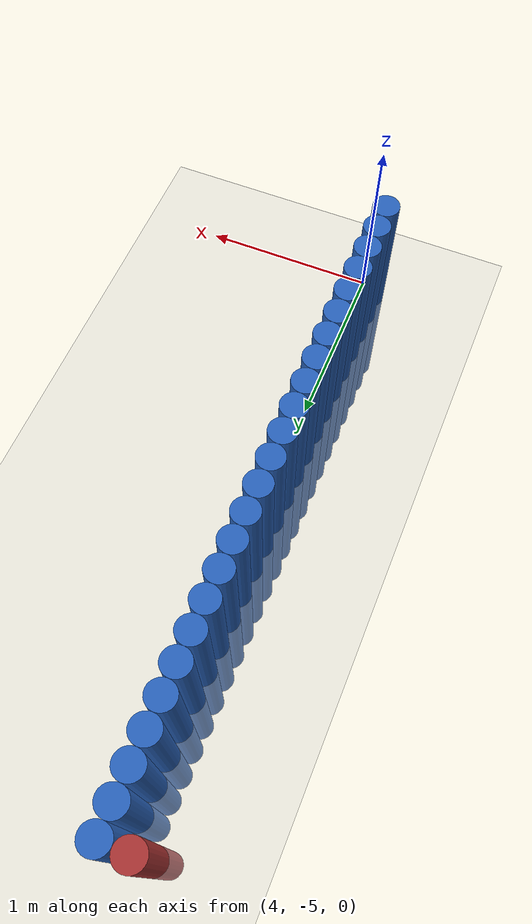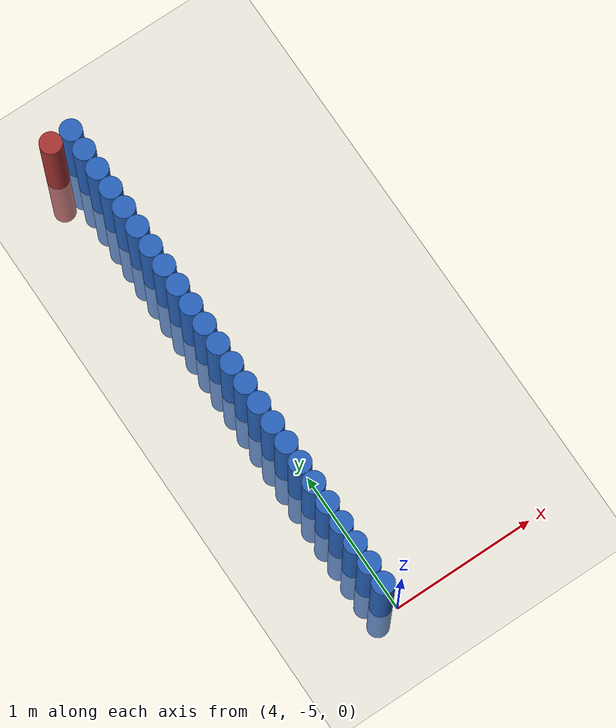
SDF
<sdf version="1.6">
 <world name="default">
  <model name="ground_plane">
   <static>1</static>
   <link name="link">
    <collision name="collision">
     <geometry><plane><normal>0 0 1</normal><size>100 100</size></plane></geometry>
     <surface><friction><ode><mu>100</mu><mu2>50</mu2></ode></friction></surface>
    </collision>
    <visual name="visual">
     <cast_shadows>0</cast_shadows>
     <geometry><plane><normal>0 0 1</normal><size>100 100</size></plane></geometry>
     <material>
      <script><uri>file://media/materials/scripts/gazebo.material</uri><name>Gazebo/Grey</name></script>
     </material>
    </visual>
   </link>
  </model>
  <model name="unit_cylinder_0">
   <static>1</static>
   <pose>3.925000 -4.925000 0.000000 0.000000 0.000000 0.000000</pose>
   <link name="link">
    <inertial>
     <mass>1</mass>
     <inertia><ixx>0.145833</ixx><ixy>0</ixy><ixz>0</ixz><iyy>0.145833</iyy><iyz>0</iyz><izz>0.125</izz></inertia>
    </inertial>
    <collision name="collision">
     <geometry><cylinder><radius>0.075000</radius><length>1.5</length></cylinder></geometry>
    </collision>
    <visual name="visual">
     <geometry><cylinder><radius>0.075000</radius><length>1.5</length></cylinder></geometry>
     <material>
      <ambient>0.152000 0.379000 0.720000 1</ambient>
      <diffuse>0.152000 0.379000 0.720000 1</diffuse>
     </material>
     <material>
      <script><name>Gazebo/Grey</name><uri>file://media/materials/scripts/gazebo.material</uri></script>
     </material>
    </visual>
   </link>
  </model>
  <model name="unit_cylinder_50">
   <static>1</static>
   <pose>3.925000 -4.775000 0.000000 0.000000 0.000000 0.000000</pose>
   <link name="link">
    <inertial>
     <mass>1</mass>
     <inertia><ixx>0.145833</ixx><ixy>0</ixy><ixz>0</ixz><iyy>0.145833</iyy><iyz>0</iyz><izz>0.125</izz></inertia>
    </inertial>
    <collision name="collision">
     <geometry><cylinder><radius>0.075000</radius><length>1.5</length></cylinder></geometry>
    </collision>
    <visual name="visual">
     <geometry><cylinder><radius>0.075000</radius><length>1.5</length></cylinder></geometry>
     <material>
      <ambient>0.152000 0.379000 0.720000 1</ambient>
      <diffuse>0.152000 0.379000 0.720000 1</diffuse>
     </material>
     <material>
      <script><name>Gazebo/Grey</name><uri>file://media/materials/scripts/gazebo.material</uri></script>
     </material>
    </visual>
   </link>
  </model>
  <model name="unit_cylinder_52">
   <static>1</static>
   <pose>3.925000 -4.625000 0.000000 0.000000 0.000000 0.000000</pose>
   <link name="link">
    <inertial>
     <mass>1</mass>
     <inertia><ixx>0.145833</ixx><ixy>0</ixy><ixz>0</ixz><iyy>0.145833</iyy><iyz>0</iyz><izz>0.125</izz></inertia>
    </inertial>
    <collision name="collision">
     <geometry><cylinder><radius>0.075000</radius><length>1.5</length></cylinder></geometry>
    </collision>
    <visual name="visual">
     <geometry><cylinder><radius>0.075000</radius><length>1.5</length></cylinder></geometry>
     <material>
      <ambient>0.152000 0.379000 0.720000 1</ambient>
      <diffuse>0.152000 0.379000 0.720000 1</diffuse>
     </material>
     <material>
      <script><name>Gazebo/Grey</name><uri>file://media/materials/scripts/gazebo.material</uri></script>
     </material>
    </visual>
   </link>
  </model>
  <model name="unit_cylinder_54">
   <static>1</static>
   <pose>3.925000 -4.475000 0.000000 0.000000 0.000000 0.000000</pose>
   <link name="link">
    <inertial>
     <mass>1</mass>
     <inertia><ixx>0.145833</ixx><ixy>0</ixy><ixz>0</ixz><iyy>0.145833</iyy><iyz>0</iyz><izz>0.125</izz></inertia>
    </inertial>
    <collision name="collision">
     <geometry><cylinder><radius>0.075000</radius><length>1.5</length></cylinder></geometry>
    </collision>
    <visual name="visual">
     <geometry><cylinder><radius>0.075000</radius><length>1.5</length></cylinder></geometry>
     <material>
      <ambient>0.152000 0.379000 0.720000 1</ambient>
      <diffuse>0.152000 0.379000 0.720000 1</diffuse>
     </material>
     <material>
      <script><name>Gazebo/Grey</name><uri>file://media/materials/scripts/gazebo.material</uri></script>
     </material>
    </visual>
   </link>
  </model>
  <model name="unit_cylinder_56">
   <static>1</static>
   <pose>3.925000 -4.325000 0.000000 0.000000 0.000000 0.000000</pose>
   <link name="link">
    <inertial>
     <mass>1</mass>
     <inertia><ixx>0.145833</ixx><ixy>0</ixy><ixz>0</ixz><iyy>0.145833</iyy><iyz>0</iyz><izz>0.125</izz></inertia>
    </inertial>
    <collision name="collision">
     <geometry><cylinder><radius>0.075000</radius><length>1.5</length></cylinder></geometry>
    </collision>
    <visual name="visual">
     <geometry><cylinder><radius>0.075000</radius><length>1.5</length></cylinder></geometry>
     <material>
      <ambient>0.152000 0.379000 0.720000 1</ambient>
      <diffuse>0.152000 0.379000 0.720000 1</diffuse>
     </material>
     <material>
      <script><name>Gazebo/Grey</name><uri>file://media/materials/scripts/gazebo.material</uri></script>
     </material>
    </visual>
   </link>
  </model>
  <model name="unit_cylinder_58">
   <static>1</static>
   <pose>3.925000 -4.175000 0.000000 0.000000 0.000000 0.000000</pose>
   <link name="link">
    <inertial>
     <mass>1</mass>
     <inertia><ixx>0.145833</ixx><ixy>0</ixy><ixz>0</ixz><iyy>0.145833</iyy><iyz>0</iyz><izz>0.125</izz></inertia>
    </inertial>
    <collision name="collision">
     <geometry><cylinder><radius>0.075000</radius><length>1.5</length></cylinder></geometry>
    </collision>
    <visual name="visual">
     <geometry><cylinder><radius>0.075000</radius><length>1.5</length></cylinder></geometry>
     <material>
      <ambient>0.152000 0.379000 0.720000 1</ambient>
      <diffuse>0.152000 0.379000 0.720000 1</diffuse>
     </material>
     <material>
      <script><name>Gazebo/Grey</name><uri>file://media/materials/scripts/gazebo.material</uri></script>
     </material>
    </visual>
   </link>
  </model>
  <model name="unit_cylinder_60">
   <static>1</static>
   <pose>3.925000 -4.025000 0.000000 0.000000 0.000000 0.000000</pose>
   <link name="link">
    <inertial>
     <mass>1</mass>
     <inertia><ixx>0.145833</ixx><ixy>0</ixy><ixz>0</ixz><iyy>0.145833</iyy><iyz>0</iyz><izz>0.125</izz></inertia>
    </inertial>
    <collision name="collision">
     <geometry><cylinder><radius>0.075000</radius><length>1.5</length></cylinder></geometry>
    </collision>
    <visual name="visual">
     <geometry><cylinder><radius>0.075000</radius><length>1.5</length></cylinder></geometry>
     <material>
      <ambient>0.152000 0.379000 0.720000 1</ambient>
      <diffuse>0.152000 0.379000 0.720000 1</diffuse>
     </material>
     <material>
      <script><name>Gazebo/Grey</name><uri>file://media/materials/scripts/gazebo.material</uri></script>
     </material>
    </visual>
   </link>
  </model>
  <model name="unit_cylinder_62">
   <static>1</static>
   <pose>3.925000 -3.875000 0.000000 0.000000 0.000000 0.000000</pose>
   <link name="link">
    <inertial>
     <mass>1</mass>
     <inertia><ixx>0.145833</ixx><ixy>0</ixy><ixz>0</ixz><iyy>0.145833</iyy><iyz>0</iyz><izz>0.125</izz></inertia>
    </inertial>
    <collision name="collision">
     <geometry><cylinder><radius>0.075000</radius><length>1.5</length></cylinder></geometry>
    </collision>
    <visual name="visual">
     <geometry><cylinder><radius>0.075000</radius><length>1.5</length></cylinder></geometry>
     <material>
      <ambient>0.152000 0.379000 0.720000 1</ambient>
      <diffuse>0.152000 0.379000 0.720000 1</diffuse>
     </material>
     <material>
      <script><name>Gazebo/Grey</name><uri>file://media/materials/scripts/gazebo.material</uri></script>
     </material>
    </visual>
   </link>
  </model>
  <model name="unit_cylinder_64">
   <static>1</static>
   <pose>3.925000 -3.725000 0.000000 0.000000 0.000000 0.000000</pose>
   <link name="link">
    <inertial>
     <mass>1</mass>
     <inertia><ixx>0.145833</ixx><ixy>0</ixy><ixz>0</ixz><iyy>0.145833</iyy><iyz>0</iyz><izz>0.125</izz></inertia>
    </inertial>
    <collision name="collision">
     <geometry><cylinder><radius>0.075000</radius><length>1.5</length></cylinder></geometry>
    </collision>
    <visual name="visual">
     <geometry><cylinder><radius>0.075000</radius><length>1.5</length></cylinder></geometry>
     <material>
      <ambient>0.152000 0.379000 0.720000 1</ambient>
      <diffuse>0.152000 0.379000 0.720000 1</diffuse>
     </material>
     <material>
      <script><name>Gazebo/Grey</name><uri>file://media/materials/scripts/gazebo.material</uri></script>
     </material>
    </visual>
   </link>
  </model>
  <model name="unit_cylinder_66">
   <static>1</static>
   <pose>3.925000 -3.575000 0.000000 0.000000 0.000000 0.000000</pose>
   <link name="link">
    <inertial>
     <mass>1</mass>
     <inertia><ixx>0.145833</ixx><ixy>0</ixy><ixz>0</ixz><iyy>0.145833</iyy><iyz>0</iyz><izz>0.125</izz></inertia>
    </inertial>
    <collision name="collision">
     <geometry><cylinder><radius>0.075000</radius><length>1.5</length></cylinder></geometry>
    </collision>
    <visual name="visual">
     <geometry><cylinder><radius>0.075000</radius><length>1.5</length></cylinder></geometry>
     <material>
      <ambient>0.152000 0.379000 0.720000 1</ambient>
      <diffuse>0.152000 0.379000 0.720000 1</diffuse>
     </material>
     <material>
      <script><name>Gazebo/Grey</name><uri>file://media/materials/scripts/gazebo.material</uri></script>
     </material>
    </visual>
   </link>
  </model>
  <model name="unit_cylinder_68">
   <static>1</static>
   <pose>3.925000 -3.425000 0.000000 0.000000 0.000000 0.000000</pose>
   <link name="link">
    <inertial>
     <mass>1</mass>
     <inertia><ixx>0.145833</ixx><ixy>0</ixy><ixz>0</ixz><iyy>0.145833</iyy><iyz>0</iyz><izz>0.125</izz></inertia>
    </inertial>
    <collision name="collision">
     <geometry><cylinder><radius>0.075000</radius><length>1.5</length></cylinder></geometry>
    </collision>
    <visual name="visual">
     <geometry><cylinder><radius>0.075000</radius><length>1.5</length></cylinder></geometry>
     <material>
      <ambient>0.152000 0.379000 0.720000 1</ambient>
      <diffuse>0.152000 0.379000 0.720000 1</diffuse>
     </material>
     <material>
      <script><name>Gazebo/Grey</name><uri>file://media/materials/scripts/gazebo.material</uri></script>
     </material>
    </visual>
   </link>
  </model>
  <model name="unit_cylinder_70">
   <static>1</static>
   <pose>3.925000 -3.275000 0.000000 0.000000 0.000000 0.000000</pose>
   <link name="link">
    <inertial>
     <mass>1</mass>
     <inertia><ixx>0.145833</ixx><ixy>0</ixy><ixz>0</ixz><iyy>0.145833</iyy><iyz>0</iyz><izz>0.125</izz></inertia>
    </inertial>
    <collision name="collision">
     <geometry><cylinder><radius>0.075000</radius><length>1.5</length></cylinder></geometry>
    </collision>
    <visual name="visual">
     <geometry><cylinder><radius>0.075000</radius><length>1.5</length></cylinder></geometry>
     <material>
      <ambient>0.152000 0.379000 0.720000 1</ambient>
      <diffuse>0.152000 0.379000 0.720000 1</diffuse>
     </material>
     <material>
      <script><name>Gazebo/Grey</name><uri>file://media/materials/scripts/gazebo.material</uri></script>
     </material>
    </visual>
   </link>
  </model>
  <model name="unit_cylinder_72">
   <static>1</static>
   <pose>3.925000 -3.125000 0.000000 0.000000 0.000000 0.000000</pose>
   <link name="link">
    <inertial>
     <mass>1</mass>
     <inertia><ixx>0.145833</ixx><ixy>0</ixy><ixz>0</ixz><iyy>0.145833</iyy><iyz>0</iyz><izz>0.125</izz></inertia>
    </inertial>
    <collision name="collision">
     <geometry><cylinder><radius>0.075000</radius><length>1.5</length></cylinder></geometry>
    </collision>
    <visual name="visual">
     <geometry><cylinder><radius>0.075000</radius><length>1.5</length></cylinder></geometry>
     <material>
      <ambient>0.152000 0.379000 0.720000 1</ambient>
      <diffuse>0.152000 0.379000 0.720000 1</diffuse>
     </material>
     <material>
      <script><name>Gazebo/Grey</name><uri>file://media/materials/scripts/gazebo.material</uri></script>
     </material>
    </visual>
   </link>
  </model>
  <model name="unit_cylinder_74">
   <static>1</static>
   <pose>3.925000 -2.975000 0.000000 0.000000 0.000000 0.000000</pose>
   <link name="link">
    <inertial>
     <mass>1</mass>
     <inertia><ixx>0.145833</ixx><ixy>0</ixy><ixz>0</ixz><iyy>0.145833</iyy><iyz>0</iyz><izz>0.125</izz></inertia>
    </inertial>
    <collision name="collision">
     <geometry><cylinder><radius>0.075000</radius><length>1.5</length></cylinder></geometry>
    </collision>
    <visual name="visual">
     <geometry><cylinder><radius>0.075000</radius><length>1.5</length></cylinder></geometry>
     <material>
      <ambient>0.152000 0.379000 0.720000 1</ambient>
      <diffuse>0.152000 0.379000 0.720000 1</diffuse>
     </material>
     <material>
      <script><name>Gazebo/Grey</name><uri>file://media/materials/scripts/gazebo.material</uri></script>
     </material>
    </visual>
   </link>
  </model>
  <model name="unit_cylinder_76">
   <static>1</static>
   <pose>3.925000 -2.825000 0.000000 0.000000 0.000000 0.000000</pose>
   <link name="link">
    <inertial>
     <mass>1</mass>
     <inertia><ixx>0.145833</ixx><ixy>0</ixy><ixz>0</ixz><iyy>0.145833</iyy><iyz>0</iyz><izz>0.125</izz></inertia>
    </inertial>
    <collision name="collision">
     <geometry><cylinder><radius>0.075000</radius><length>1.5</length></cylinder></geometry>
    </collision>
    <visual name="visual">
     <geometry><cylinder><radius>0.075000</radius><length>1.5</length></cylinder></geometry>
     <material>
      <ambient>0.152000 0.379000 0.720000 1</ambient>
      <diffuse>0.152000 0.379000 0.720000 1</diffuse>
     </material>
     <material>
      <script><name>Gazebo/Grey</name><uri>file://media/materials/scripts/gazebo.material</uri></script>
     </material>
    </visual>
   </link>
  </model>
  <model name="unit_cylinder_78">
   <static>1</static>
   <pose>3.925000 -2.675000 0.000000 0.000000 0.000000 0.000000</pose>
   <link name="link">
    <inertial>
     <mass>1</mass>
     <inertia><ixx>0.145833</ixx><ixy>0</ixy><ixz>0</ixz><iyy>0.145833</iyy><iyz>0</iyz><izz>0.125</izz></inertia>
    </inertial>
    <collision name="collision">
     <geometry><cylinder><radius>0.075000</radius><length>1.5</length></cylinder></geometry>
    </collision>
    <visual name="visual">
     <geometry><cylinder><radius>0.075000</radius><length>1.5</length></cylinder></geometry>
     <material>
      <ambient>0.152000 0.379000 0.720000 1</ambient>
      <diffuse>0.152000 0.379000 0.720000 1</diffuse>
     </material>
     <material>
      <script><name>Gazebo/Grey</name><uri>file://media/materials/scripts/gazebo.material</uri></script>
     </material>
    </visual>
   </link>
  </model>
  <model name="unit_cylinder_80">
   <static>1</static>
   <pose>3.925000 -2.525000 0.000000 0.000000 0.000000 0.000000</pose>
   <link name="link">
    <inertial>
     <mass>1</mass>
     <inertia><ixx>0.145833</ixx><ixy>0</ixy><ixz>0</ixz><iyy>0.145833</iyy><iyz>0</iyz><izz>0.125</izz></inertia>
    </inertial>
    <collision name="collision">
     <geometry><cylinder><radius>0.075000</radius><length>1.5</length></cylinder></geometry>
    </collision>
    <visual name="visual">
     <geometry><cylinder><radius>0.075000</radius><length>1.5</length></cylinder></geometry>
     <material>
      <ambient>0.152000 0.379000 0.720000 1</ambient>
      <diffuse>0.152000 0.379000 0.720000 1</diffuse>
     </material>
     <material>
      <script><name>Gazebo/Grey</name><uri>file://media/materials/scripts/gazebo.material</uri></script>
     </material>
    </visual>
   </link>
  </model>
  <model name="unit_cylinder_82">
   <static>1</static>
   <pose>3.925000 -2.375000 0.000000 0.000000 0.000000 0.000000</pose>
   <link name="link">
    <inertial>
     <mass>1</mass>
     <inertia><ixx>0.145833</ixx><ixy>0</ixy><ixz>0</ixz><iyy>0.145833</iyy><iyz>0</iyz><izz>0.125</izz></inertia>
    </inertial>
    <collision name="collision">
     <geometry><cylinder><radius>0.075000</radius><length>1.5</length></cylinder></geometry>
    </collision>
    <visual name="visual">
     <geometry><cylinder><radius>0.075000</radius><length>1.5</length></cylinder></geometry>
     <material>
      <ambient>0.152000 0.379000 0.720000 1</ambient>
      <diffuse>0.152000 0.379000 0.720000 1</diffuse>
     </material>
     <material>
      <script><name>Gazebo/Grey</name><uri>file://media/materials/scripts/gazebo.material</uri></script>
     </material>
    </visual>
   </link>
  </model>
  <model name="unit_cylinder_84">
   <static>1</static>
   <pose>3.925000 -2.225000 0.000000 0.000000 0.000000 0.000000</pose>
   <link name="link">
    <inertial>
     <mass>1</mass>
     <inertia><ixx>0.145833</ixx><ixy>0</ixy><ixz>0</ixz><iyy>0.145833</iyy><iyz>0</iyz><izz>0.125</izz></inertia>
    </inertial>
    <collision name="collision">
     <geometry><cylinder><radius>0.075000</radius><length>1.5</length></cylinder></geometry>
    </collision>
    <visual name="visual">
     <geometry><cylinder><radius>0.075000</radius><length>1.5</length></cylinder></geometry>
     <material>
      <ambient>0.152000 0.379000 0.720000 1</ambient>
      <diffuse>0.152000 0.379000 0.720000 1</diffuse>
     </material>
     <material>
      <script><name>Gazebo/Grey</name><uri>file://media/materials/scripts/gazebo.material</uri></script>
     </material>
    </visual>
   </link>
  </model>
  <model name="unit_cylinder_86">
   <static>1</static>
   <pose>3.925000 -2.075000 0.000000 0.000000 0.000000 0.000000</pose>
   <link name="link">
    <inertial>
     <mass>1</mass>
     <inertia><ixx>0.145833</ixx><ixy>0</ixy><ixz>0</ixz><iyy>0.145833</iyy><iyz>0</iyz><izz>0.125</izz></inertia>
    </inertial>
    <collision name="collision">
     <geometry><cylinder><radius>0.075000</radius><length>1.5</length></cylinder></geometry>
    </collision>
    <visual name="visual">
     <geometry><cylinder><radius>0.075000</radius><length>1.5</length></cylinder></geometry>
     <material>
      <ambient>0.152000 0.379000 0.720000 1</ambient>
      <diffuse>0.152000 0.379000 0.720000 1</diffuse>
     </material>
     <material>
      <script><name>Gazebo/Grey</name><uri>file://media/materials/scripts/gazebo.material</uri></script>
     </material>
    </visual>
   </link>
  </model>
  <model name="unit_cylinder_88">
   <static>1</static>
   <pose>3.925000 -1.925000 0.000000 0.000000 0.000000 0.000000</pose>
   <link name="link">
    <inertial>
     <mass>1</mass>
     <inertia><ixx>0.145833</ixx><ixy>0</ixy><ixz>0</ixz><iyy>0.145833</iyy><iyz>0</iyz><izz>0.125</izz></inertia>
    </inertial>
    <collision name="collision">
     <geometry><cylinder><radius>0.075000</radius><length>1.5</length></cylinder></geometry>
    </collision>
    <visual name="visual">
     <geometry><cylinder><radius>0.075000</radius><length>1.5</length></cylinder></geometry>
     <material>
      <ambient>0.152000 0.379000 0.720000 1</ambient>
      <diffuse>0.152000 0.379000 0.720000 1</diffuse>
     </material>
     <material>
      <script><name>Gazebo/Grey</name><uri>file://media/materials/scripts/gazebo.material</uri></script>
     </material>
    </visual>
   </link>
  </model>
  <model name="unit_cylinder_90">
   <static>1</static>
   <pose>3.925000 -1.775000 0.000000 0.000000 0.000000 0.000000</pose>
   <link name="link">
    <inertial>
     <mass>1</mass>
     <inertia><ixx>0.145833</ixx><ixy>0</ixy><ixz>0</ixz><iyy>0.145833</iyy><iyz>0</iyz><izz>0.125</izz></inertia>
    </inertial>
    <collision name="collision">
     <geometry><cylinder><radius>0.075000</radius><length>1.5</length></cylinder></geometry>
    </collision>
    <visual name="visual">
     <geometry><cylinder><radius>0.075000</radius><length>1.5</length></cylinder></geometry>
     <material>
      <ambient>0.152000 0.379000 0.720000 1</ambient>
      <diffuse>0.152000 0.379000 0.720000 1</diffuse>
     </material>
     <material>
      <script><name>Gazebo/Grey</name><uri>file://media/materials/scripts/gazebo.material</uri></script>
     </material>
    </visual>
   </link>
  </model>
  <model name="unit_cylinder_92">
   <static>1</static>
   <pose>3.925000 -1.625000 0.000000 0.000000 0.000000 0.000000</pose>
   <link name="link">
    <inertial>
     <mass>1</mass>
     <inertia><ixx>0.145833</ixx><ixy>0</ixy><ixz>0</ixz><iyy>0.145833</iyy><iyz>0</iyz><izz>0.125</izz></inertia>
    </inertial>
    <collision name="collision">
     <geometry><cylinder><radius>0.075000</radius><length>1.5</length></cylinder></geometry>
    </collision>
    <visual name="visual">
     <geometry><cylinder><radius>0.075000</radius><length>1.5</length></cylinder></geometry>
     <material>
      <ambient>0.152000 0.379000 0.720000 1</ambient>
      <diffuse>0.152000 0.379000 0.720000 1</diffuse>
     </material>
     <material>
      <script><name>Gazebo/Grey</name><uri>file://media/materials/scripts/gazebo.material</uri></script>
     </material>
    </visual>
   </link>
  </model>
  <model name="unit_cylinder_94">
   <static>1</static>
   <pose>3.925000 -1.475000 0.000000 0.000000 0.000000 0.000000</pose>
   <link name="link">
    <inertial>
     <mass>1</mass>
     <inertia><ixx>0.145833</ixx><ixy>0</ixy><ixz>0</ixz><iyy>0.145833</iyy><iyz>0</iyz><izz>0.125</izz></inertia>
    </inertial>
    <collision name="collision">
     <geometry><cylinder><radius>0.075000</radius><length>1.5</length></cylinder></geometry>
    </collision>
    <visual name="visual">
     <geometry><cylinder><radius>0.075000</radius><length>1.5</length></cylinder></geometry>
     <material>
      <ambient>0.152000 0.379000 0.720000 1</ambient>
      <diffuse>0.152000 0.379000 0.720000 1</diffuse>
     </material>
     <material>
      <script><name>Gazebo/Grey</name><uri>file://media/materials/scripts/gazebo.material</uri></script>
     </material>
    </visual>
   </link>
  </model>
  <model name="unit_cylinder_424">
   <static>1</static>
   <pose>3.775000 -1.475000 0.000000 0.000000 0.000000 0.000000</pose>
   <link name="link">
    <inertial>
     <mass>1</mass>
     <inertia><ixx>0.145833</ixx><ixy>0</ixy><ixz>0</ixz><iyy>0.145833</iyy><iyz>0</iyz><izz>0.125</izz></inertia>
    </inertial>
    <collision name="collision">
     <geometry><cylinder><radius>0.075000</radius><length>1.5</length></cylinder></geometry>
    </collision>
    <visual name="visual">
     <geometry><cylinder><radius>0.075000</radius><length>1.5</length></cylinder></geometry>
     <material>
      <ambient>0.648000 0.192000 0.192000 1</ambient>
      <diffuse>0.648000 0.192000 0.192000 1</diffuse>
     </material>
     <material>
      <script><name>Gazebo/Grey</name><uri>file://media/materials/scripts/gazebo.material</uri></script>
     </material>
    </visual>
   </link>
  </model>
  <model name="unit_cylinder_439">
   <static>1</static>
   <pose>3.925000 -1.925000 0.000000 0.000000 0.000000 0.000000</pose>
   <link name="link">
    <inertial>
     <mass>1</mass>
     <inertia><ixx>0.145833</ixx><ixy>0</ixy><ixz>0</ixz><iyy>0.145833</iyy><iyz>0</iyz><izz>0.125</izz></inertia>
    </inertial>
    <collision name="collision">
     <geometry><cylinder><radius>0.075000</radius><length>1.5</length></cylinder></geometry>
    </collision>
    <visual name="visual">
     <geometry><cylinder><radius>0.075000</radius><length>1.5</length></cylinder></geometry>
     <material>
      <ambient>0.152000 0.379000 0.720000 1</ambient>
      <diffuse>0.152000 0.379000 0.720000 1</diffuse>
     </material>
     <material>
      <script><name>Gazebo/Grey</name><uri>file://media/materials/scripts/gazebo.material</uri></script>
     </material>
    </visual>
   </link>
  </model>
  <model name="unit_cylinder_440">
   <static>1</static>
   <pose>3.925000 -1.775000 0.000000 0.000000 0.000000 0.000000</pose>
   <link name="link">
    <inertial>
     <mass>1</mass>
     <inertia><ixx>0.145833</ixx><ixy>0</ixy><ixz>0</ixz><iyy>0.145833</iyy><iyz>0</iyz><izz>0.125</izz></inertia>
    </inertial>
    <collision name="collision">
     <geometry><cylinder><radius>0.075000</radius><length>1.5</length></cylinder></geometry>
    </collision>
    <visual name="visual">
     <geometry><cylinder><radius>0.075000</radius><length>1.5</length></cylinder></geometry>
     <material>
      <ambient>0.152000 0.379000 0.720000 1</ambient>
      <diffuse>0.152000 0.379000 0.720000 1</diffuse>
     </material>
     <material>
      <script><name>Gazebo/Grey</name><uri>file://media/materials/scripts/gazebo.material</uri></script>
     </material>
    </visual>
   </link>
  </model>
  <model name="unit_cylinder_441">
   <static>1</static>
   <pose>3.925000 -1.625000 0.000000 0.000000 0.000000 0.000000</pose>
   <link name="link">
    <inertial>
     <mass>1</mass>
     <inertia><ixx>0.145833</ixx><ixy>0</ixy><ixz>0</ixz><iyy>0.145833</iyy><iyz>0</iyz><izz>0.125</izz></inertia>
    </inertial>
    <collision name="collision">
     <geometry><cylinder><radius>0.075000</radius><length>1.5</length></cylinder></geometry>
    </collision>
    <visual name="visual">
     <geometry><cylinder><radius>0.075000</radius><length>1.5</length></cylinder></geometry>
     <material>
      <ambient>0.152000 0.379000 0.720000 1</ambient>
      <diffuse>0.152000 0.379000 0.720000 1</diffuse>
     </material>
     <material>
      <script><name>Gazebo/Grey</name><uri>file://media/materials/scripts/gazebo.material</uri></script>
     </material>
    </visual>
   </link>
  </model>
 </world>
</sdf>
